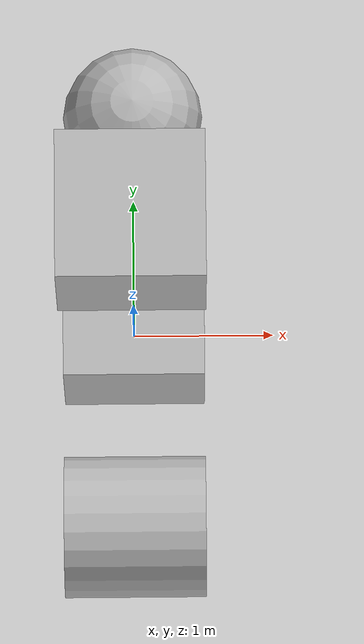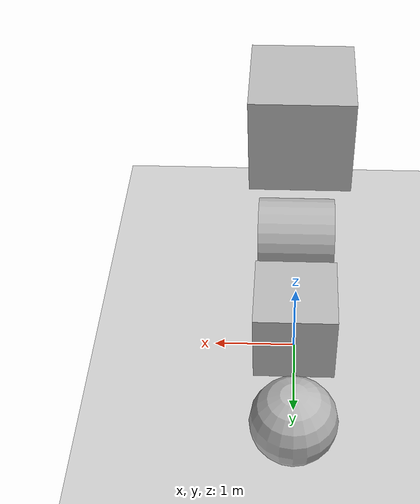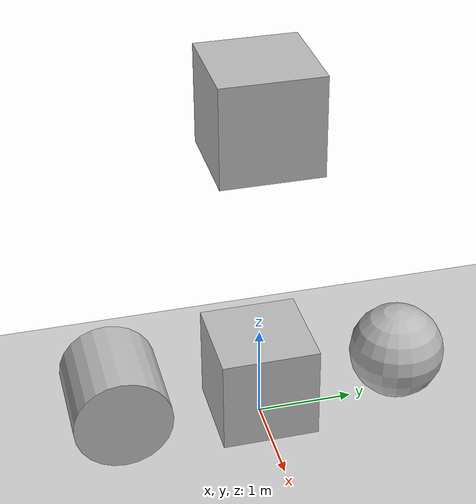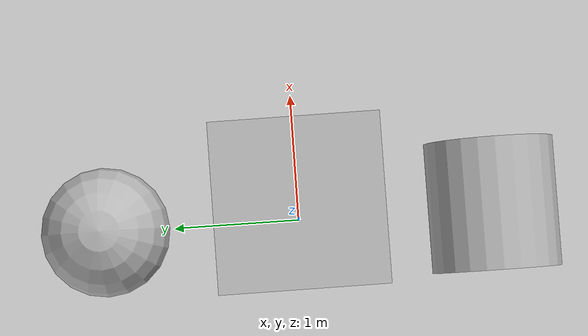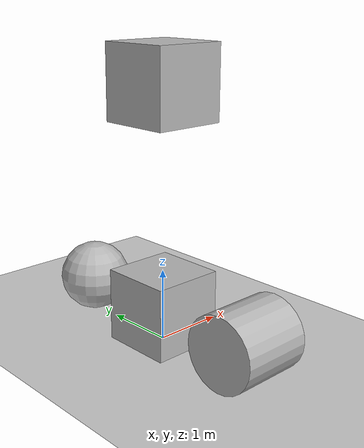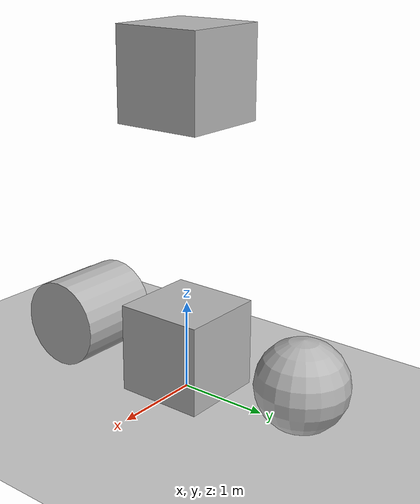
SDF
<?xml version="1.0" ?>
<sdf version="1.5">
  <world name="default">
    <include>
      <uri>model://ground_plane</uri>
    </include>
    <include>
      <uri>model://sun</uri>
    </include>
    <model name="box">
      <pose>0 0 0.5 0 0 0</pose>
      <link name="link">
        <collision name="collision">
          <geometry>
            <box>
              <size>1 1 1</size>
            </box>
          </geometry>
        </collision>
        <visual name="visual">
          <material>
            <specular>1 0 0 1</specular>
            <shininess>1</shininess>
          </material>
          <geometry>
            <box>
              <size>1 1 1</size>
            </box>
          </geometry>
        </visual>
        <visual name="visual2">
          <pose>0 0 3 0 0 0</pose>
          <material>
            <specular>1 0 0 1</specular>
            <shininess>10</shininess>
          </material>
          <geometry>
            <box>
              <size>1 1 1</size>
            </box>
          </geometry>
        </visual>
      </link>
    </model>
    <model name="sphere">
      <pose>0 1.5 0.5 0 0 0</pose>
      <link name="link">
        <collision name="collision">
          <geometry>
            <sphere>
              <radius>0.5</radius>
            </sphere>
          </geometry>
        </collision>
        <visual name="visual">
          <material>
            <specular>0 1 0 1</specular>
            <shininess>5</shininess>
          </material>
          <geometry>
            <sphere>
              <radius>0.5</radius>
            </sphere>
          </geometry>
        </visual>
      </link>
    </model>
    <model name="cylinder">
      <pose>0 -1.5 0.5 0 1.5707 0</pose>
      <link name="link">
        <collision name="collision">
          <geometry>
            <cylinder>
              <radius>0.5</radius>
              <length>1.0</length>
            </cylinder>
          </geometry>
        </collision>
        <visual name="visual">
          <material>
            <specular>0 0 1 1</specular>
            <shininess>10</shininess>
          </material>
          <geometry>
            <cylinder>
              <radius>0.5</radius>
              <length>1.0</length>
            </cylinder>
          </geometry>
        </visual>
      </link>
    </model>
  </world>
</sdf>
